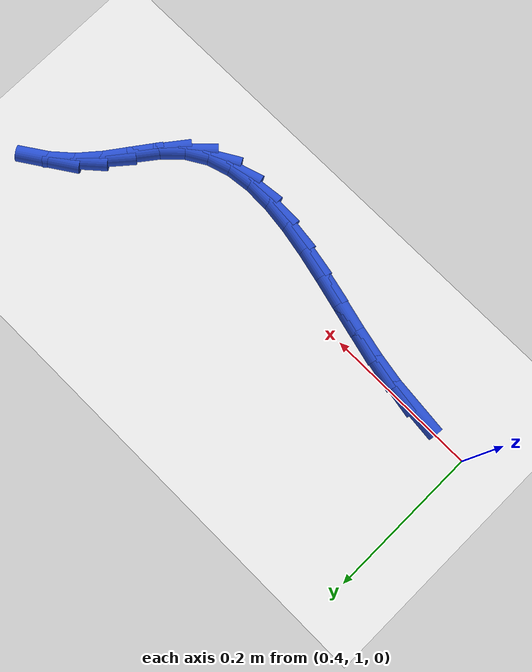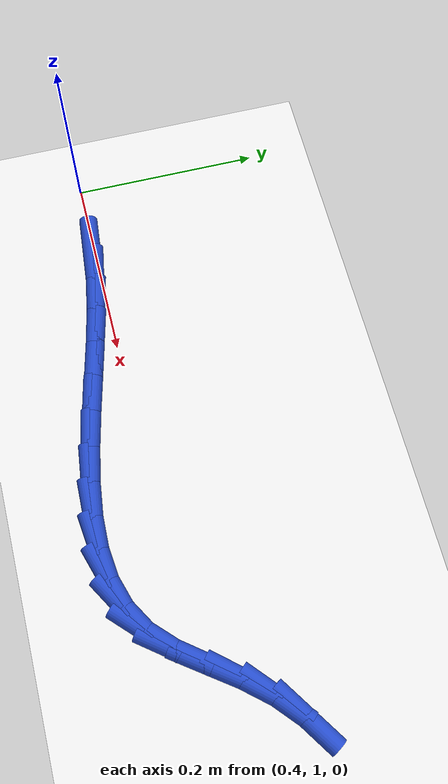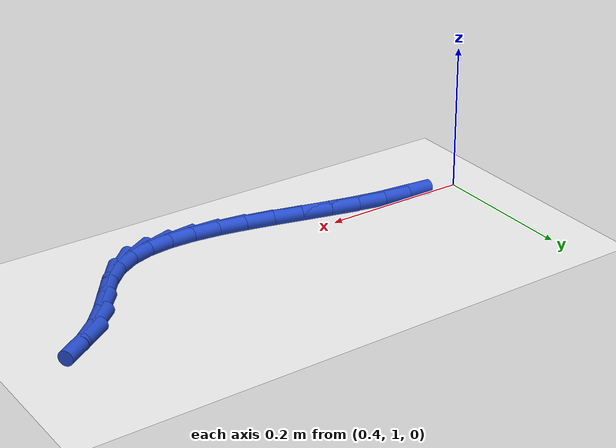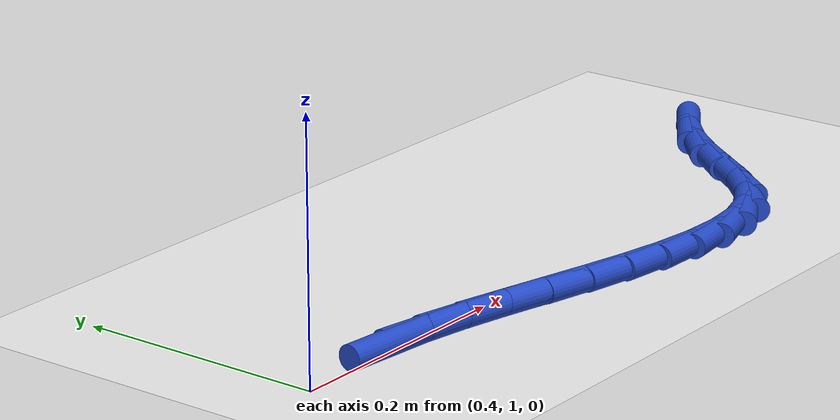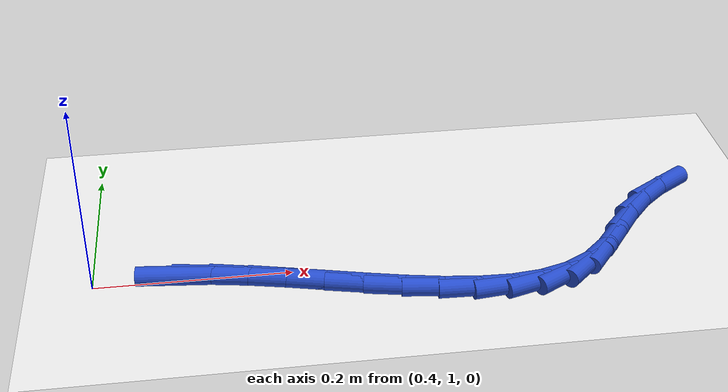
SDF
<sdf version="1.6">
 <world name="default">
  <model name="ground_plane">
   <static>1</static>
   <link name="link">
    <collision name="collision">
     <geometry><plane><normal>0 0 1</normal><size>100 100</size></plane></geometry>
     <surface><friction><ode><mu>100</mu><mu2>50</mu2></ode></friction></surface>
    </collision>
    <visual name="visual">
     <cast_shadows>0</cast_shadows>
     <geometry><plane><normal>0 0 1</normal><size>100 100</size></plane></geometry>
     <material>
      <script><uri>file://media/materials/scripts/gazebo.material</uri><name>Gazebo/WhiteGlow</name></script>
     </material>
    </visual>
   </link>
  </model>
  <model name="line">
   <link name="link_34">
    <pose>0.4835379596513926 0.9966748761520671 0.01 0 1.57 -0.1010305521893574</pose>
    <collision name="collision">
     <geometry><cylinder><radius>0.01</radius><length>0.08</length></cylinder></geometry>
    </collision>
    <visual name="visual">
     <material>
      <script><name>Gazebo/Blue</name><uri>file://media/materials/scripts/gazebo.material</uri></script>
     </material>
     <geometry><cylinder><radius>0.01</radius><length>0.08</length></cylinder></geometry>
    </visual>
   </link>
   <link name="link_35">
    <pose>0.5189634627714 0.9930835907308748 0.01 0 1.57 -0.17614209295042063</pose>
    <collision name="collision">
     <geometry><cylinder><radius>0.01</radius><length>0.08</length></cylinder></geometry>
    </collision>
    <visual name="visual">
     <material>
      <script><name>Gazebo/Blue</name><uri>file://media/materials/scripts/gazebo.material</uri></script>
     </material>
     <geometry><cylinder><radius>0.01</radius><length>0.08</length></cylinder></geometry>
    </visual>
   </link>
   <link name="link_36">
    <pose>0.5556755310614322 0.9865493326163968 0.01 0 1.57 -0.2235828932018794</pose>
    <collision name="collision">
     <geometry><cylinder><radius>0.01</radius><length>0.08</length></cylinder></geometry>
    </collision>
    <visual name="visual">
     <material>
      <script><name>Gazebo/Blue</name><uri>file://media/materials/scripts/gazebo.material</uri></script>
     </material>
     <geometry><cylinder><radius>0.01</radius><length>0.08</length></cylinder></geometry>
    </visual>
   </link>
   <link name="link_37">
    <pose>0.5932483192039847 0.9780058625078278 0.01 0 1.57 -0.2478739484184134</pose>
    <collision name="collision">
     <geometry><cylinder><radius>0.01</radius><length>0.08</length></cylinder></geometry>
    </collision>
    <visual name="visual">
     <material>
      <script><name>Gazebo/Blue</name><uri>file://media/materials/scripts/gazebo.material</uri></script>
     </material>
     <geometry><cylinder><radius>0.01</radius><length>0.08</length></cylinder></geometry>
    </visual>
   </link>
   <link name="link_38">
    <pose>0.6312559818815534 0.9683869411043635 0.01 0 1.57 -0.25131716015431266</pose>
    <collision name="collision">
     <geometry><cylinder><radius>0.01</radius><length>0.08</length></cylinder></geometry>
    </collision>
    <visual name="visual">
     <material>
      <script><name>Gazebo/Blue</name><uri>file://media/materials/scripts/gazebo.material</uri></script>
     </material>
     <geometry><cylinder><radius>0.01</radius><length>0.08</length></cylinder></geometry>
    </visual>
   </link>
   <link name="link_39">
    <pose>0.6692726737766346 0.9586263291052 0.01 0 1.57 -0.23415064069050673</pose>
    <collision name="collision">
     <geometry><cylinder><radius>0.01</radius><length>0.08</length></cylinder></geometry>
    </collision>
    <visual name="visual">
     <material>
      <script><name>Gazebo/Blue</name><uri>file://media/materials/scripts/gazebo.material</uri></script>
     </material>
     <geometry><cylinder><radius>0.01</radius><length>0.08</length></cylinder></geometry>
    </visual>
   </link>
   <link name="link_40">
    <pose>0.7068725495717239 0.949657787209532 0.01 0 1.57 -0.194549614665824</pose>
    <collision name="collision">
     <geometry><cylinder><radius>0.01</radius><length>0.08</length></cylinder></geometry>
    </collision>
    <visual name="visual">
     <material>
      <script><name>Gazebo/Blue</name><uri>file://media/materials/scripts/gazebo.material</uri></script>
     </material>
     <geometry><cylinder><radius>0.01</radius><length>0.08</length></cylinder></geometry>
    </visual>
   </link>
   <link name="link_41">
    <pose>0.7436297639493172 0.9424150761165558 0.01 0 1.57 -0.12843219386284946</pose>
    <collision name="collision">
     <geometry><cylinder><radius>0.01</radius><length>0.08</length></cylinder></geometry>
    </collision>
    <visual name="visual">
     <material>
      <script><name>Gazebo/Blue</name><uri>file://media/materials/scripts/gazebo.material</uri></script>
     </material>
     <geometry><cylinder><radius>0.01</radius><length>0.08</length></cylinder></geometry>
    </visual>
   </link>
   <link name="link_42">
    <pose>0.7791184715919108 0.937831956525467 0.01 0 1.57 -0.029279579861216275</pose>
    <collision name="collision">
     <geometry><cylinder><radius>0.01</radius><length>0.08</length></cylinder></geometry>
    </collision>
    <visual name="visual">
     <material>
      <script><name>Gazebo/Blue</name><uri>file://media/materials/scripts/gazebo.material</uri></script>
     </material>
     <geometry><cylinder><radius>0.01</radius><length>0.08</length></cylinder></geometry>
    </visual>
   </link>
   <link name="link_43">
    <pose>0.8129128271820006 0.9368421891354609 0.01 0 1.57 0.11121837390763155</pose>
    <collision name="collision">
     <geometry><cylinder><radius>0.01</radius><length>0.08</length></cylinder></geometry>
    </collision>
    <visual name="visual">
     <material>
      <script><name>Gazebo/Blue</name><uri>file://media/materials/scripts/gazebo.material</uri></script>
     </material>
     <geometry><cylinder><radius>0.01</radius><length>0.08</length></cylinder></geometry>
    </visual>
   </link>
   <link name="link_44">
    <pose>0.8445869854020821 0.9403795346457331 0.01 0 1.57 0.29961885614698375</pose>
    <collision name="collision">
     <geometry><cylinder><radius>0.01</radius><length>0.08</length></cylinder></geometry>
    </collision>
    <visual name="visual">
     <material>
      <script><name>Gazebo/Blue</name><uri>file://media/materials/scripts/gazebo.material</uri></script>
     </material>
     <geometry><cylinder><radius>0.01</radius><length>0.08</length></cylinder></geometry>
    </visual>
   </link>
   <link name="link_45">
    <pose>0.8737151009346513 0.9493777537554791 0.01 0 1.57 0.5319182465018285</pose>
    <collision name="collision">
     <geometry><cylinder><radius>0.01</radius><length>0.08</length></cylinder></geometry>
    </collision>
    <visual name="visual">
     <material>
      <script><name>Gazebo/Blue</name><uri>file://media/materials/scripts/gazebo.material</uri></script>
     </material>
     <geometry><cylinder><radius>0.01</radius><length>0.08</length></cylinder></geometry>
    </visual>
   </link>
   <link name="link_46">
    <pose>0.8998713284622049 0.9647706071638951 0.01 0 1.57 0.774930430798748</pose>
    <collision name="collision">
     <geometry><cylinder><radius>0.01</radius><length>0.08</length></cylinder></geometry>
    </collision>
    <visual name="visual">
     <material>
      <script><name>Gazebo/Blue</name><uri>file://media/materials/scripts/gazebo.material</uri></script>
     </material>
     <geometry><cylinder><radius>0.01</radius><length>0.08</length></cylinder></geometry>
    </visual>
   </link>
   <link name="link_47">
    <pose>0.9227779407021346 0.9872026095742683 0.01 0 1.57 0.9207620130363051</pose>
    <collision name="collision">
     <geometry><cylinder><radius>0.01</radius><length>0.08</length></cylinder></geometry>
    </collision>
    <visual name="visual">
     <material>
      <script><name>Gazebo/Blue</name><uri>file://media/materials/scripts/gazebo.material</uri></script>
     </material>
     <geometry><cylinder><radius>0.01</radius><length>0.08</length></cylinder></geometry>
    </visual>
   </link>
   <link name="link_48">
    <pose>0.9435724757292667 1.0145545350146317 0.01 0 1.57 0.946753013525226</pose>
    <collision name="collision">
     <geometry><cylinder><radius>0.01</radius><length>0.08</length></cylinder></geometry>
    </collision>
    <visual name="visual">
     <material>
      <script><name>Gazebo/Blue</name><uri>file://media/materials/scripts/gazebo.material</uri></script>
     </material>
     <geometry><cylinder><radius>0.01</radius><length>0.08</length></cylinder></geometry>
    </visual>
   </link>
   <link name="link_49">
    <pose>0.9641783219672696 1.043172543129673 0.01 0 1.57 0.8669294178932866</pose>
    <collision name="collision">
     <geometry><cylinder><radius>0.01</radius><length>0.08</length></cylinder></geometry>
    </collision>
    <visual name="visual">
     <material>
      <script><name>Gazebo/Blue</name><uri>file://media/materials/scripts/gazebo.material</uri></script>
     </material>
     <geometry><cylinder><radius>0.01</radius><length>0.08</length></cylinder></geometry>
    </visual>
   </link>
   <link name="link_50">
    <pose>0.9864895327444952 1.0694544105416728 0.01 0 1.57 0.7266920355072394</pose>
    <collision name="collision">
     <geometry><cylinder><radius>0.01</radius><length>0.08</length></cylinder></geometry>
    </collision>
    <visual name="visual">
     <material>
      <script><name>Gazebo/Blue</name><uri>file://media/materials/scripts/gazebo.material</uri></script>
     </material>
     <geometry><cylinder><radius>0.01</radius><length>0.08</length></cylinder></geometry>
    </visual>
   </link>
   <link name="link_51">
    <pose>1.0114005778594204 1.0915997779362427 0.01 0 1.57 0.5863528986662768</pose>
    <collision name="collision">
     <geometry><cylinder><radius>0.01</radius><length>0.08</length></cylinder></geometry>
    </collision>
    <visual name="visual">
     <material>
      <script><name>Gazebo/Blue</name><uri>file://media/materials/scripts/gazebo.material</uri></script>
     </material>
     <geometry><cylinder><radius>0.01</radius><length>0.08</length></cylinder></geometry>
    </visual>
   </link>
  </model>
 </world>
</sdf>
